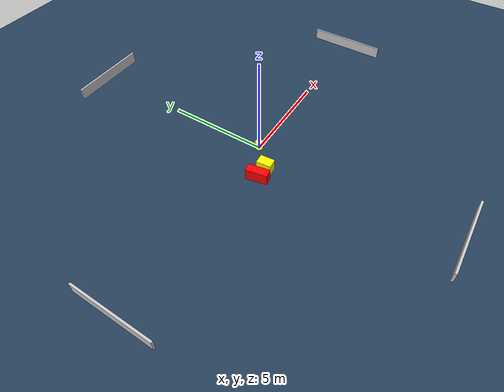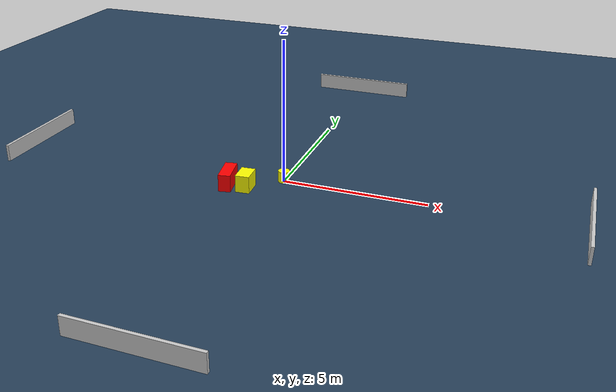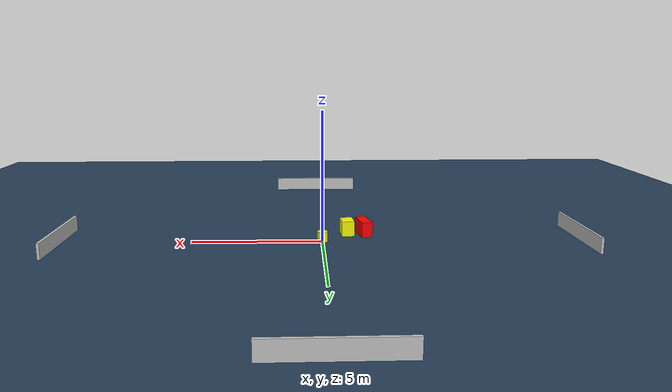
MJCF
<?xml version="1.0" ?>
<mujoco model="generated_environment">
  <option timestep="0.01" integrator="RK4" cone="elliptic"/>
  <default>
    <geom density="1"/>
  </default>
  <asset>
    <texture builtin="gradient" height="3072" name="skybox" rgb1="0.3 0.5 0.7" rgb2="0 0 0" type="skybox" width="512"/>
    <texture builtin="checker" height="300" name="groundplane" rgb1="0.2 0.3 0.4" rgb2="0.1 0.2 0.3" type="2d" width="300"/>
    <material name="groundplane" reflectance="0.2" texrepeat="5 5" texture="groundplane"/>
  </asset>
  <worldbody>
    <light dir="0 0 -1" directional="true" pos="0 0 1.5"/>
    <geom condim="3" friction="0.5 0.005 0.001" material="groundplane" name="floor" pos="0 0 0" size="0 0 0.05" type="plane"/>
    <body name="walls">
      <geom name="wall_1" condim="4" pos="-10.0 0.0 0.3" rgba="0.800000011920929 0.800000011920929 0.800000011920929 1.0" size="0.05 2.0 0.3" type="box"/>
      <geom name="wall_2" condim="4" pos="10.0 0.0 0.3" rgba="0.800000011920929 0.800000011920929 0.800000011920929 1.0" size="0.05 2.0 0.3" type="box"/>
      <geom name="wall_3" condim="4" pos="0.0 -10.0 0.3" rgba="0.800000011920929 0.800000011920929 0.800000011920929 1.0" size="2.0 0.05 0.3" type="box"/>
      <geom name="wall_4" condim="4" pos="0.0 10.0 0.3" rgba="0.800000011920929 0.800000011920929 0.800000011920929 1.0" size="2.0 0.05 0.3" type="box"/>
    </body>
    <body name="robot">
      <joint name="joint_x" type="slide" pos="0 0 0" axis="1 0 0"/>
      <joint name="joint_y" type="slide" pos="0 0 0" axis="0 1 0"/>
      <geom name="robot" type="cylinder" pos="0.0 0.0 0.2" size="0.2 0.2 0.0" mass="5.0" friction="1.0 0.005 0.0001" condim="4" rgba="1.0 1.0 0.0 1.0"/>
    </body>
    <body name="obstacle_1_movable">
      <geom name="obstacle_1_movable" condim="4" pos="-1.0180012841903994 -0.9849284051376008 0.3" euler="0 0 274.4743364480559" friction="0.0 0.005 0.001" rgba="1.0 1.0 0.0 1.0" size="0.3564217150353417 0.24262695928236164 0.3" type="box" mass="0.1"/>
      <joint type="free"/>
    </body>
    <body name="obstacle_2_static">
      <geom name="obstacle_2_static" condim="4" pos="-1.6754672356316667 -0.9673167737319004 0.3" euler="0 0 10.607965682658103" friction="0.0 0.005 0.001" rgba="1.0 0.0 0.0 1.0" size="0.20906935529272538 0.5271988710005768 0.3" type="box"/>
    </body>
  </worldbody>
  <actuator>
    <motor name="actuator_x" joint="joint_x" gear="1" ctrlrange="-1 1"/>
    <motor name="actuator_y" joint="joint_y" gear="1" ctrlrange="-1 1"/>
  </actuator>
</mujoco>
